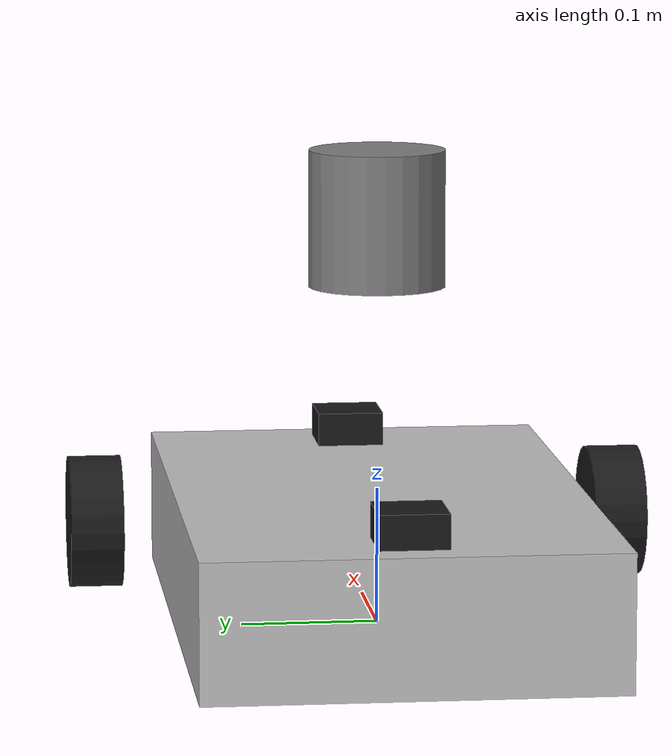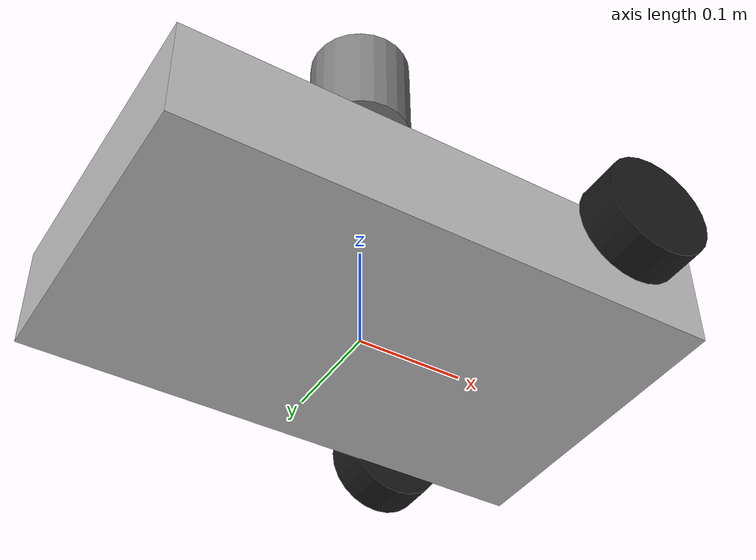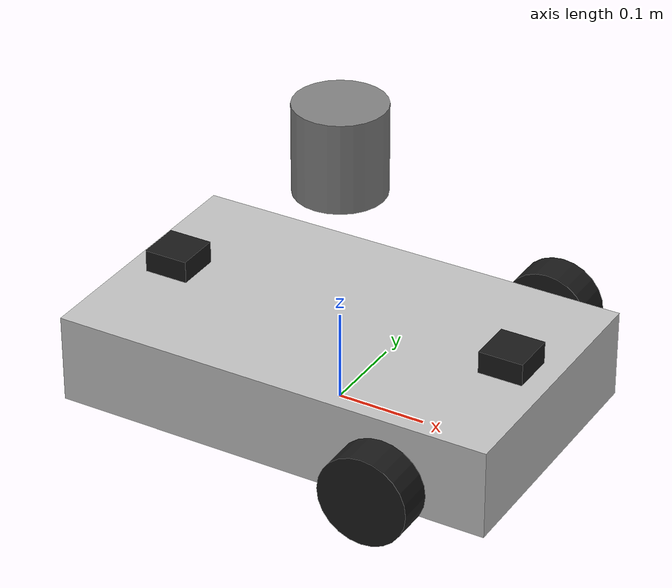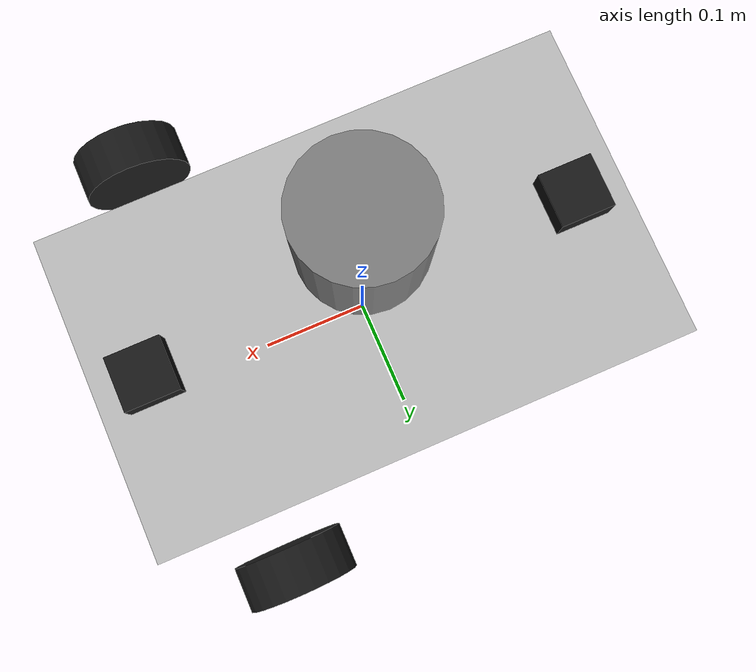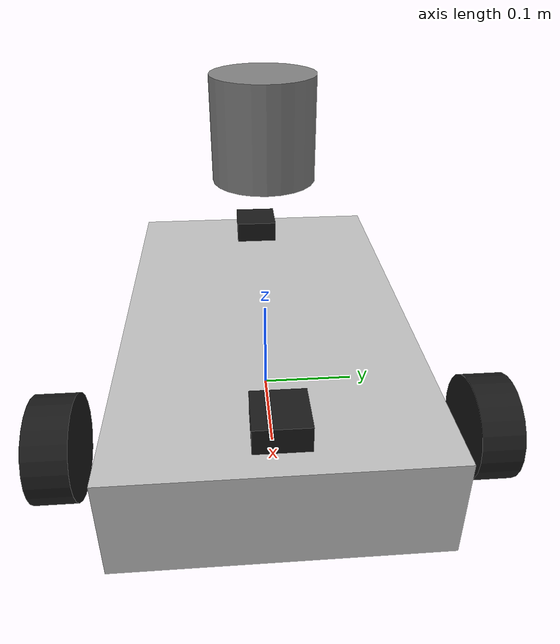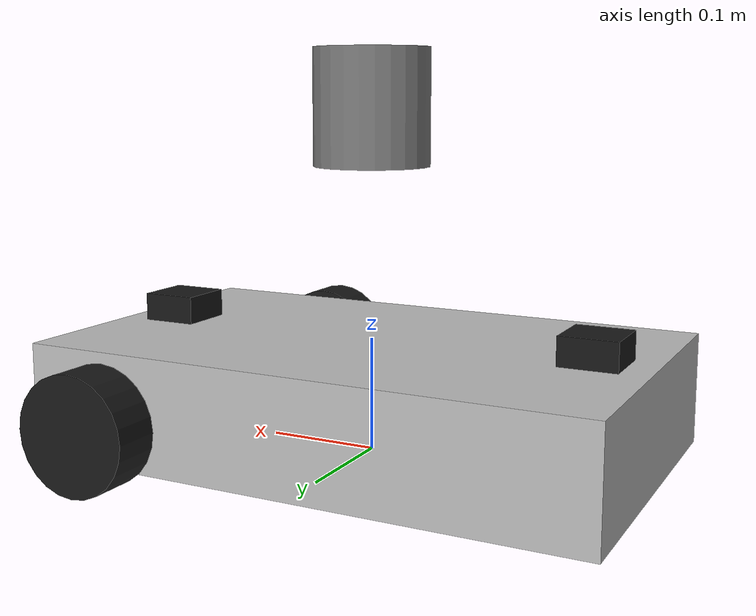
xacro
<?xml version="1.0"?>
<robot xmlns:xacro="http://www.ros.org/wiki/xacro" name="scout_robot">
  <xacro:include filename="../base_differential_drive.xacro" />
  <xacro:macro name="scout_robot">
    <xacro:base_differential_drive prefix="" />
    <!-- Material Definitions -->
    <material name="grey">
      <color rgba="0.5 0.5 0.5 1.0" />
    </material>
    <material name="black">
      <color rgba="0.1 0.1 0.1 1.0" />
    </material>
    <!-- Specialized links -->
    <link name="lidar_360_link">
      <inertial><origin xyz="0 0 0" rpy="0 0 0" /><mass value="0.5" /><inertia ixx="0.001" ixy="0" ixz="0" iyy="0.001" iyz="0" izz="0.001" /></inertial>
      <visual><origin xyz="0 0 0.15" rpy="0 0 0" /><geometry><cylinder radius="0.05" length="0.1" /></geometry><material name="grey" /></visual>
      <collision><origin xyz="0 0 0.15" rpy="0 0 0" /><geometry><cylinder radius="0.05" length="0.1" /></geometry></collision>
    </link>
    <link name="front_camera_link">
      <inertial><origin xyz="0 0 0" rpy="0 0 0" /><mass value="0.2" /><inertia ixx="0.0005" ixy="0" ixz="0" iyy="0.0005" iyz="0" izz="0.0005" /></inertial>
      <visual><origin xyz="0 0 0" rpy="0 0 0" /><geometry><box size="0.05 0.05 0.05" /></geometry><material name="black" /></visual>
      <collision><origin xyz="0 0 0" rpy="0 0 0" /><geometry><box size="0.05 0.05 0.05" /></geometry></collision>
    </link>
    <link name="rear_camera_link">
      <inertial><origin xyz="0 0 0" rpy="0 0 0" /><mass value="0.2" /><inertia ixx="0.0005" ixy="0" ixz="0" iyy="0.0005" iyz="0" izz="0.0005" /></inertial>
      <visual><origin xyz="0 0 0" rpy="0 0 0" /><geometry><box size="0.05 0.05 0.05" /></geometry><material name="black" /></visual>
      <collision><origin xyz="0 0 0" rpy="0 0 0" /><geometry><box size="0.05 0.05 0.05" /></geometry></collision>
    </link>
    <!-- Specialized joints -->
    <joint name="lidar_360_joint" type="fixed">
      <parent link="base_link" />
      <child link="lidar_360_link" />
      <origin xyz="0 0 0.15" rpy="0 0 0" />
    </joint>
    <joint name="front_camera_joint" type="fixed">
      <parent link="base_link" />
      <child link="front_camera_link" />
      <origin xyz="0.2 0 0.1" rpy="0 0 0" />
    </joint>
    <joint name="rear_camera_joint" type="fixed">
      <parent link="base_link" />
      <child link="rear_camera_link" />
      <origin xyz="-0.2 0 0.1" rpy="0 0 0" />
    </joint>
    <!-- Gazebo plugins -->
    <gazebo>
      <plugin filename="ign-gazebo-lidar-system" name="ignition::gazebo::systems::Lidar">
        <topic>/scout_robot/lidar</topic>
        <horizontal_fov>6.283</horizontal_fov>
        <range><min>0.1</min><max>100</max></range>
        <link>lidar_360_link</link>
      </plugin>
      <plugin filename="ign-gazebo-camera-system" name="ignition::gazebo::systems::Camera">
        <topic>/scout_robot/front_camera</topic>
        <camera><horizontal_fov>1.047</horizontal_fov><image><width>320</width><height>240</height></image></camera>
        <link>front_camera_link</link>
      </plugin>
      <plugin filename="ign-gazebo-camera-system" name="ignition::gazebo::systems::Camera">
        <topic>/scout_robot/rear_camera</topic>
        <camera><horizontal_fov>1.047</horizontal_fov><image><width>320</width><height>240</height></image></camera>
        <link>rear_camera_link</link>
      </plugin>
    </gazebo>
  </xacro:macro>
  <xacro:scout_robot />
</robot>

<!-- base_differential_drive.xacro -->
<robot xmlns:xacro="http://www.ros.org/wiki/xacro">
  <xacro:macro name="base_differential_drive" params="prefix">
    <!-- Robot Properties -->
    <xacro:property name="base_length" value="0.5" />
    <xacro:property name="base_width" value="0.3" />
    <xacro:property name="base_height" value="0.1" />
    <xacro:property name="wheel_radius" value="0.05" />
    <xacro:property name="wheel_width" value="0.04" />
    <xacro:property name="wheel_ygap" value="0.2" />
    <xacro:property name="wheel_xoff" value="0.15" />
    <xacro:property name="wheel_zoff" value="0.05" />
    <xacro:property name="caster_radius" value="0.025" />
    <xacro:property name="caster_xoff" value="-0.15" />

    <!-- Base Link -->
    <link name="${prefix}base_link">
      <inertial>
        <origin xyz="0 0 ${base_height/2}" rpy="0 0 0" />
        <mass value="5.0" />
        <inertia ixx="0.1" ixy="0" ixz="0" iyy="0.1" iyz="0" izz="0.1" />
      </inertial>
      <visual>
        <origin xyz="0 0 ${base_height/2}" rpy="0 0 0" />
        <geometry>
          <box size="${base_length} ${base_width} ${base_height}" />
        </geometry>
        <material name="silver">
          <color rgba="0.75 0.75 0.75 1.0" />
        </material>
      </visual>
      <collision>
        <origin xyz="0 0 ${base_height/2}" rpy="0 0 0" />
        <geometry>
          <box size="${base_length} ${base_width} ${base_height}" />
        </geometry>
      </collision>
    </link>

    <!-- Left Wheel -->
    <link name="${prefix}left_wheel">
      <inertial>
        <origin xyz="0 0 0" rpy="${pi/2} 0 0" />
        <mass value="0.5" />
        <inertia ixx="0.001" ixy="0" ixz="0" iyy="0.001" iyz="0" izz="0.001" />
      </inertial>
      <visual>
        <origin xyz="0 0 0" rpy="${pi/2} 0 0" />
        <geometry>
          <cylinder radius="${wheel_radius}" length="${wheel_width}" />
        </geometry>
        <material name="black">
          <color rgba="0.1 0.1 0.1 1.0" />
        </material>
      </visual>
      <collision>
        <origin xyz="0 0 0" rpy="${pi/2} 0 0" />
        <geometry>
          <cylinder radius="${wheel_radius}" length="${wheel_width}" />
        </geometry>
      </collision>
    </link>

    <!-- Left Wheel Joint -->
    <joint name="${prefix}left_wheel_joint" type="continuous">
      <parent link="${prefix}base_link" />
      <child link="${prefix}left_wheel" />
      <origin xyz="${wheel_xoff} ${wheel_ygap} ${wheel_zoff}" rpy="0 0 0" />
      <axis xyz="0 1 0" />
      <dynamics damping="0.1" friction="0.1" />
    </joint>

    <!-- Right Wheel -->
    <link name="${prefix}right_wheel">
      <inertial>
        <origin xyz="0 0 0" rpy="${pi/2} 0 0" />
        <mass value="0.5" />
        <inertia ixx="0.001" ixy="0" ixz="0" iyy="0.001" iyz="0" izz="0.001" />
      </inertial>
      <visual>
        <origin xyz="0 0 0" rpy="${pi/2} 0 0" />
        <geometry>
          <cylinder radius="${wheel_radius}" length="${wheel_width}" />
        </geometry>
        <material name="black">
          <color rgba="0.1 0.1 0.1 1.0" />
        </material>
      </visual>
      <collision>
        <origin xyz="0 0 0" rpy="${pi/2} 0 0" />
        <geometry>
          <cylinder radius="${wheel_radius}" length="${wheel_width}" />
        </geometry>
      </collision>
    </link>

    <!-- Right Wheel Joint -->
    <joint name="${prefix}right_wheel_joint" type="continuous">
      <parent link="${prefix}base_link" />
      <child link="${prefix}right_wheel" />
      <origin xyz="${wheel_xoff} -${wheel_ygap} ${wheel_zoff}" rpy="0 0 0" />
      <axis xyz="0 1 0" />
      <dynamics damping="0.1" friction="0.1" />
    </joint>

    <!-- Caster Wheel -->
    <link name="${prefix}caster">
      <inertial>
        <origin xyz="0 0 0" rpy="0 0 0" />
        <mass value="0.1" />
        <inertia ixx="0.0001" ixy="0" ixz="0" iyy="0.0001" iyz="0" izz="0.0001" />
      </inertial>
      <visual>
        <origin xyz="0 0 0" rpy="0 0 0" />
        <geometry>
          <sphere radius="${caster_radius}" />
        </geometry>
        <material name="black">
          <color rgba="0.1 0.1 0.1 1.0" />
        </material>
      </visual>
      <collision>
        <origin xyz="0 0 0" rpy="0 0 0" />
        <geometry>
          <sphere radius="${caster_radius}" />
        </geometry>
      </collision>
    </link>

    <!-- Caster Joint -->
    <joint name="${prefix}caster_joint" type="fixed">
      <parent link="${prefix}base_link" />
      <child link="${prefix}caster" />
      <origin xyz="${caster_xoff} 0 ${caster_radius}" rpy="0 0 0" />
    </joint>

    <!-- Gazebo Differential Drive Plugin -->
    <gazebo>
      <plugin filename="ign-gazebo-diff-drive-system" name="ignition::gazebo::systems::DiffDrive">
        <left_joint>${prefix}left_wheel_joint</left_joint>
        <right_joint>${prefix}right_wheel_joint</right_joint>
        <wheel_separation>${2 * wheel_ygap}</wheel_separation>
        <wheel_radius>${wheel_radius}</wheel_radius>
        <odom_publish_frequency>10</odom_publish_frequency>
        <topic>/cmd_vel</topic>
        <frame_id>odom</frame_id>
        <child_frame_id>${prefix}base_link</child_frame_id>
      </plugin>
    </gazebo>
  </xacro:macro>
</robot>
